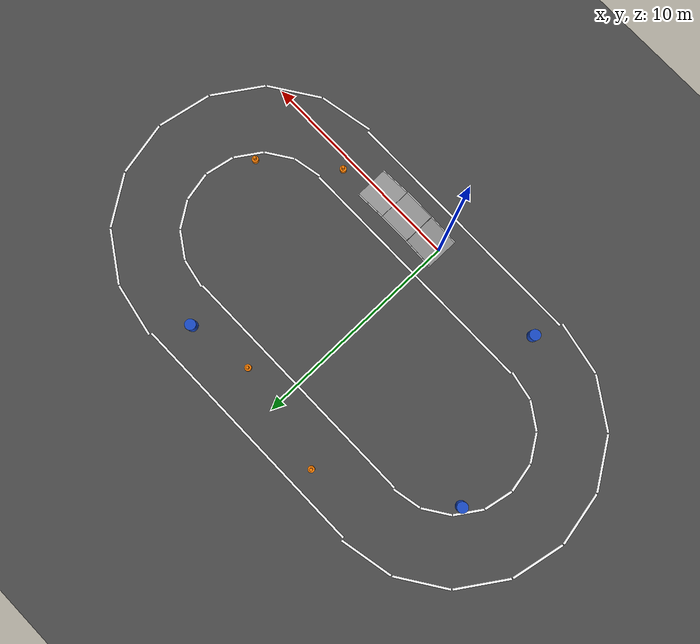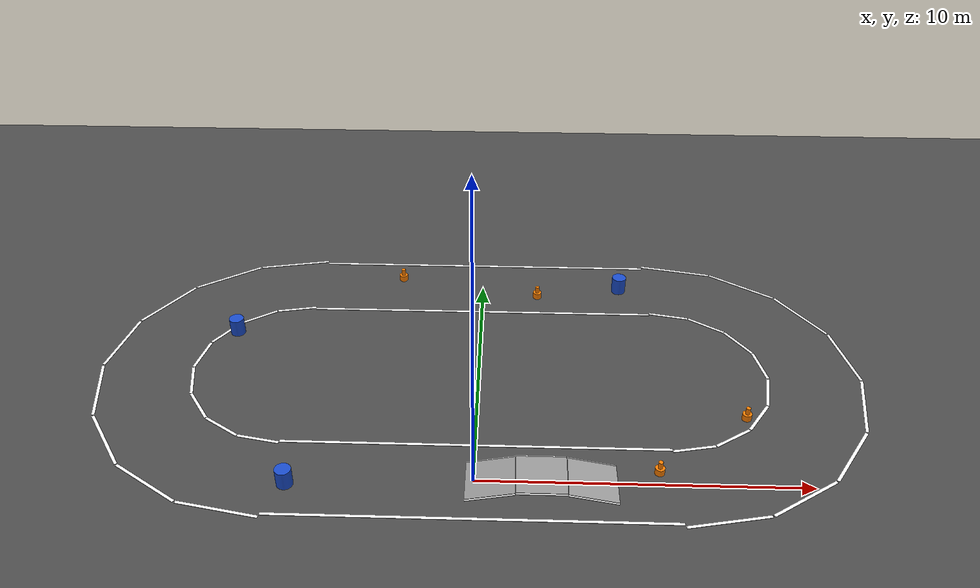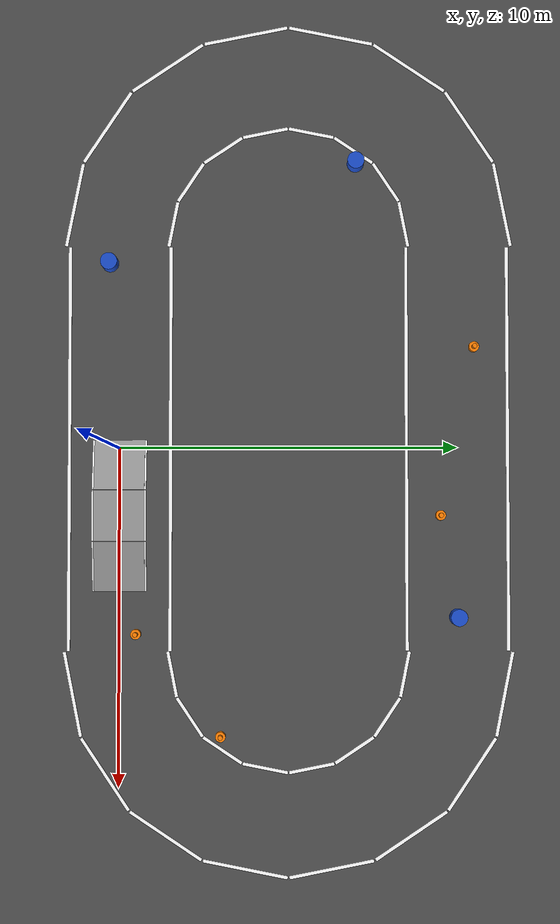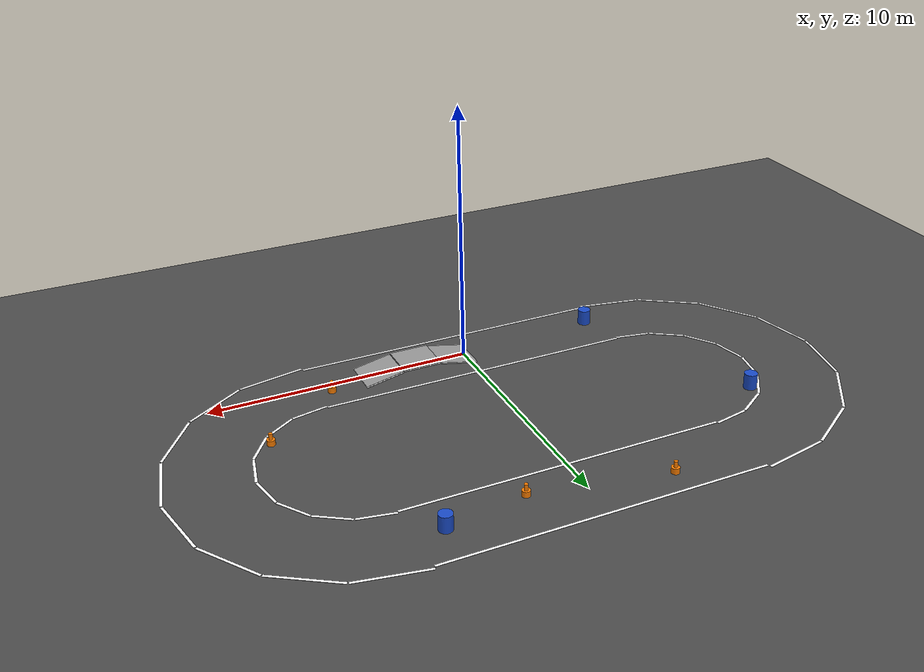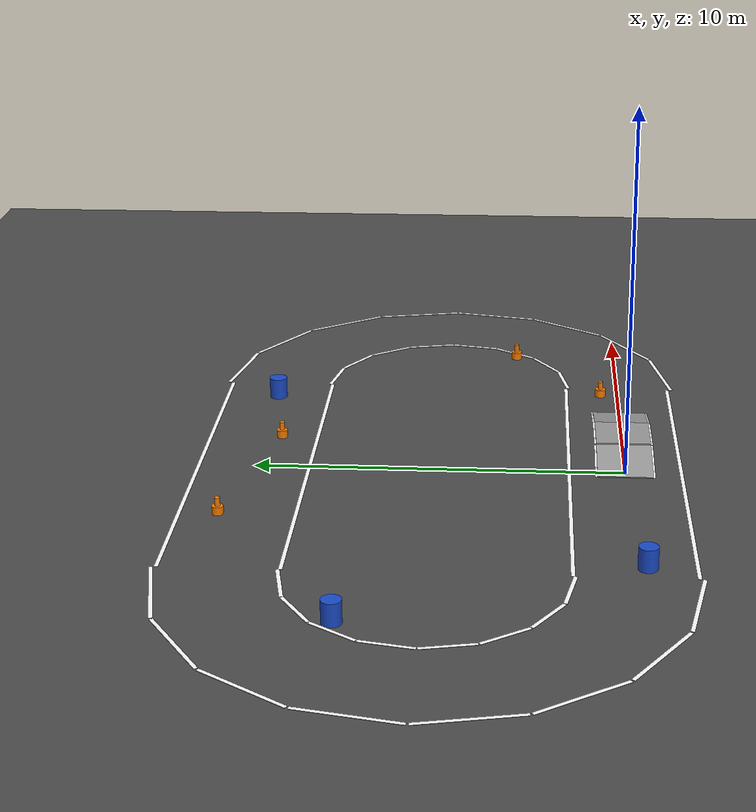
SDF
<?xml version="1.0" ?>
<sdf version="1.7">
  <world name="igvc_course">

    <!-- Physics (Updated for Gazebo Classic / ODE) -->
    <physics type="ode">
      <max_step_size>0.001</max_step_size>
      <real_time_update_rate>1000</real_time_update_rate>
    </physics>

    <!-- Spherical coordinates: Oakland University, MI (IGVC venue) -->
    <spherical_coordinates>
      <surface_model>EARTH_WGS84</surface_model>
      <latitude_deg>42.6745</latitude_deg>
      <longitude_deg>-83.2187</longitude_deg>
      <elevation>282.0</elevation>
      <heading_deg>0</heading_deg>
    </spherical_coordinates>

    <!-- Sun -->
    <light type="directional" name="sun">
      <cast_shadows>true</cast_shadows>
      <pose>0 0 10 0 0 0</pose>
      <diffuse>0.9 0.9 0.9 1</diffuse>
      <specular>0.3 0.3 0.3 1</specular>
      <direction>-0.5 0.3 -0.9</direction>
    </light>

    <!-- Ground plane (dark gray asphalt) -->
    <model name="ground_plane">
      <static>true</static>
      <link name="link">
        <collision name="collision">
          <geometry>
            <plane><normal>0 0 1</normal><size>50 50</size></plane>
          </geometry>
          <surface>
            <friction>
              <ode><mu>0.8</mu><mu2>0.8</mu2></ode>
            </friction>
          </surface>
        </collision>
        <visual name="visual">
          <geometry>
            <plane><normal>0 0 1</normal><size>50 50</size></plane>
          </geometry>
          <material>
            <ambient>0.25 0.25 0.25 1</ambient>
            <diffuse>0.3 0.3 0.3 1</diffuse>
            <specular>0.1 0.1 0.1 1</specular>
          </material>
        </visual>
      </link>
    </model>

    <!-- ===== WHITE LANE LINES ===== -->
    <!-- Oval/stadium track: 12m straights, 5m-radius semicircles, 3m lane width -->

    <!-- Bottom straight (y=0 centerline): inner line at y=-1.5, outer at y=1.5 -->
    <model name="lane_bottom_inner">
      <static>true</static>
      <pose>0.0000 -1.5000 0.01 0 0 0.0000</pose>
      <link name="link">
        <visual name="visual">
          <geometry><box><size>12.0000 0.1 0.01</size></box></geometry>
          <material>
            <ambient>1 1 1 1</ambient>
            <diffuse>1 1 1 1</diffuse>
            <emissive>1 1 1 1</emissive>
          </material>
        </visual>
      </link>
    </model>
    <model name="lane_bottom_outer">
      <static>true</static>
      <pose>0.0000 1.5000 0.01 0 0 0.0000</pose>
      <link name="link">
        <visual name="visual">
          <geometry><box><size>12.0000 0.1 0.01</size></box></geometry>
          <material>
            <ambient>1 1 1 1</ambient>
            <diffuse>1 1 1 1</diffuse>
            <emissive>1 1 1 1</emissive>
          </material>
        </visual>
      </link>
    </model>

    <!-- Top straight (y=10 centerline): inner line at y=8.5, outer at y=11.5 -->
    <model name="lane_top_inner">
      <static>true</static>
      <pose>0.0000 8.5000 0.01 0 0 0.0000</pose>
      <link name="link">
        <visual name="visual">
          <geometry><box><size>12.0000 0.1 0.01</size></box></geometry>
          <material>
            <ambient>1 1 1 1</ambient>
            <diffuse>1 1 1 1</diffuse>
            <emissive>1 1 1 1</emissive>
          </material>
        </visual>
      </link>
    </model>
    <model name="lane_top_outer">
      <static>true</static>
      <pose>0.0000 11.5000 0.01 0 0 0.0000</pose>
      <link name="link">
        <visual name="visual">
          <geometry><box><size>12.0000 0.1 0.01</size></box></geometry>
          <material>
            <ambient>1 1 1 1</ambient>
            <diffuse>1 1 1 1</diffuse>
            <emissive>1 1 1 1</emissive>
          </material>
        </visual>
      </link>
    </model>

    <!-- Right semicircle curves: center (6, 5), CCW from -90° to +90° -->
    <model name="curve_right_inner_0">
      <static>true</static>
      <pose>6.6828 1.5673 0.01 0 0 0.1963</pose>
      <link name="link">
        <visual name="visual">
          <geometry><box><size>1.3656 0.1 0.01</size></box></geometry>
          <material>
            <ambient>1 1 1 1</ambient>
            <diffuse>1 1 1 1</diffuse>
            <emissive>1 1 1 1</emissive>
          </material>
        </visual>
      </link>
    </model>
    <model name="curve_right_inner_1">
      <static>true</static>
      <pose>7.9445 2.0899 0.01 0 0 0.5890</pose>
      <link name="link">
        <visual name="visual">
          <geometry><box><size>1.3656 0.1 0.01</size></box></geometry>
          <material>
            <ambient>1 1 1 1</ambient>
            <diffuse>1 1 1 1</diffuse>
            <emissive>1 1 1 1</emissive>
          </material>
        </visual>
      </link>
    </model>
    <model name="curve_right_inner_2">
      <static>true</static>
      <pose>8.9101 3.0555 0.01 0 0 0.9817</pose>
      <link name="link">
        <visual name="visual">
          <geometry><box><size>1.3656 0.1 0.01</size></box></geometry>
          <material>
            <ambient>1 1 1 1</ambient>
            <diffuse>1 1 1 1</diffuse>
            <emissive>1 1 1 1</emissive>
          </material>
        </visual>
      </link>
    </model>
    <model name="curve_right_inner_3">
      <static>true</static>
      <pose>9.4327 4.3172 0.01 0 0 1.3744</pose>
      <link name="link">
        <visual name="visual">
          <geometry><box><size>1.3656 0.1 0.01</size></box></geometry>
          <material>
            <ambient>1 1 1 1</ambient>
            <diffuse>1 1 1 1</diffuse>
            <emissive>1 1 1 1</emissive>
          </material>
        </visual>
      </link>
    </model>
    <model name="curve_right_inner_4">
      <static>true</static>
      <pose>9.4327 5.6828 0.01 0 0 1.7671</pose>
      <link name="link">
        <visual name="visual">
          <geometry><box><size>1.3656 0.1 0.01</size></box></geometry>
          <material>
            <ambient>1 1 1 1</ambient>
            <diffuse>1 1 1 1</diffuse>
            <emissive>1 1 1 1</emissive>
          </material>
        </visual>
      </link>
    </model>
    <model name="curve_right_inner_5">
      <static>true</static>
      <pose>8.9101 6.9445 0.01 0 0 2.1598</pose>
      <link name="link">
        <visual name="visual">
          <geometry><box><size>1.3656 0.1 0.01</size></box></geometry>
          <material>
            <ambient>1 1 1 1</ambient>
            <diffuse>1 1 1 1</diffuse>
            <emissive>1 1 1 1</emissive>
          </material>
        </visual>
      </link>
    </model>
    <model name="curve_right_inner_6">
      <static>true</static>
      <pose>7.9445 7.9101 0.01 0 0 2.5525</pose>
      <link name="link">
        <visual name="visual">
          <geometry><box><size>1.3656 0.1 0.01</size></box></geometry>
          <material>
            <ambient>1 1 1 1</ambient>
            <diffuse>1 1 1 1</diffuse>
            <emissive>1 1 1 1</emissive>
          </material>
        </visual>
      </link>
    </model>
    <model name="curve_right_inner_7">
      <static>true</static>
      <pose>6.6828 8.4327 0.01 0 0 2.9452</pose>
      <link name="link">
        <visual name="visual">
          <geometry><box><size>1.3656 0.1 0.01</size></box></geometry>
          <material>
            <ambient>1 1 1 1</ambient>
            <diffuse>1 1 1 1</diffuse>
            <emissive>1 1 1 1</emissive>
          </material>
        </visual>
      </link>
    </model>
    <model name="curve_right_outer_0">
      <static>true</static>
      <pose>7.2681 -1.3751 0.01 0 0 0.1963</pose>
      <link name="link">
        <visual name="visual">
          <geometry><box><size>2.5362 0.1 0.01</size></box></geometry>
          <material>
            <ambient>1 1 1 1</ambient>
            <diffuse>1 1 1 1</diffuse>
            <emissive>1 1 1 1</emissive>
          </material>
        </visual>
      </link>
    </model>
    <model name="curve_right_outer_1">
      <static>true</static>
      <pose>9.6112 -0.4046 0.01 0 0 0.5890</pose>
      <link name="link">
        <visual name="visual">
          <geometry><box><size>2.5362 0.1 0.01</size></box></geometry>
          <material>
            <ambient>1 1 1 1</ambient>
            <diffuse>1 1 1 1</diffuse>
            <emissive>1 1 1 1</emissive>
          </material>
        </visual>
      </link>
    </model>
    <model name="curve_right_outer_2">
      <static>true</static>
      <pose>11.4046 1.3888 0.01 0 0 0.9817</pose>
      <link name="link">
        <visual name="visual">
          <geometry><box><size>2.5362 0.1 0.01</size></box></geometry>
          <material>
            <ambient>1 1 1 1</ambient>
            <diffuse>1 1 1 1</diffuse>
            <emissive>1 1 1 1</emissive>
          </material>
        </visual>
      </link>
    </model>
    <model name="curve_right_outer_3">
      <static>true</static>
      <pose>12.3751 3.7319 0.01 0 0 1.3744</pose>
      <link name="link">
        <visual name="visual">
          <geometry><box><size>2.5362 0.1 0.01</size></box></geometry>
          <material>
            <ambient>1 1 1 1</ambient>
            <diffuse>1 1 1 1</diffuse>
            <emissive>1 1 1 1</emissive>
          </material>
        </visual>
      </link>
    </model>
    <model name="curve_right_outer_4">
      <static>true</static>
      <pose>12.3751 6.2681 0.01 0 0 1.7671</pose>
      <link name="link">
        <visual name="visual">
          <geometry><box><size>2.5362 0.1 0.01</size></box></geometry>
          <material>
            <ambient>1 1 1 1</ambient>
            <diffuse>1 1 1 1</diffuse>
            <emissive>1 1 1 1</emissive>
          </material>
        </visual>
      </link>
    </model>
    <model name="curve_right_outer_5">
      <static>true</static>
      <pose>11.4046 8.6112 0.01 0 0 2.1598</pose>
      <link name="link">
        <visual name="visual">
          <geometry><box><size>2.5362 0.1 0.01</size></box></geometry>
          <material>
            <ambient>1 1 1 1</ambient>
            <diffuse>1 1 1 1</diffuse>
            <emissive>1 1 1 1</emissive>
          </material>
        </visual>
      </link>
    </model>
    <model name="curve_right_outer_6">
      <static>true</static>
      <pose>9.6112 10.4046 0.01 0 0 2.5525</pose>
      <link name="link">
        <visual name="visual">
          <geometry><box><size>2.5362 0.1 0.01</size></box></geometry>
          <material>
            <ambient>1 1 1 1</ambient>
            <diffuse>1 1 1 1</diffuse>
            <emissive>1 1 1 1</emissive>
          </material>
        </visual>
      </link>
    </model>
    <model name="curve_right_outer_7">
      <static>true</static>
      <pose>7.2681 11.3751 0.01 0 0 2.9452</pose>
      <link name="link">
        <visual name="visual">
          <geometry><box><size>2.5362 0.1 0.01</size></box></geometry>
          <material>
            <ambient>1 1 1 1</ambient>
            <diffuse>1 1 1 1</diffuse>
            <emissive>1 1 1 1</emissive>
          </material>
        </visual>
      </link>
    </model>

    <!-- Left semicircle curves: center (-6, 5), CCW from +90° to +270° -->
    <model name="curve_left_inner_0">
      <static>true</static>
      <pose>-6.6828 8.4327 0.01 0 0 3.3379</pose>
      <link name="link">
        <visual name="visual">
          <geometry><box><size>1.3656 0.1 0.01</size></box></geometry>
          <material>
            <ambient>1 1 1 1</ambient>
            <diffuse>1 1 1 1</diffuse>
            <emissive>1 1 1 1</emissive>
          </material>
        </visual>
      </link>
    </model>
    <model name="curve_left_inner_1">
      <static>true</static>
      <pose>-7.9445 7.9101 0.01 0 0 3.7306</pose>
      <link name="link">
        <visual name="visual">
          <geometry><box><size>1.3656 0.1 0.01</size></box></geometry>
          <material>
            <ambient>1 1 1 1</ambient>
            <diffuse>1 1 1 1</diffuse>
            <emissive>1 1 1 1</emissive>
          </material>
        </visual>
      </link>
    </model>
    <model name="curve_left_inner_2">
      <static>true</static>
      <pose>-8.9101 6.9445 0.01 0 0 4.1233</pose>
      <link name="link">
        <visual name="visual">
          <geometry><box><size>1.3656 0.1 0.01</size></box></geometry>
          <material>
            <ambient>1 1 1 1</ambient>
            <diffuse>1 1 1 1</diffuse>
            <emissive>1 1 1 1</emissive>
          </material>
        </visual>
      </link>
    </model>
    <model name="curve_left_inner_3">
      <static>true</static>
      <pose>-9.4327 5.6828 0.01 0 0 4.5160</pose>
      <link name="link">
        <visual name="visual">
          <geometry><box><size>1.3656 0.1 0.01</size></box></geometry>
          <material>
            <ambient>1 1 1 1</ambient>
            <diffuse>1 1 1 1</diffuse>
            <emissive>1 1 1 1</emissive>
          </material>
        </visual>
      </link>
    </model>
    <model name="curve_left_inner_4">
      <static>true</static>
      <pose>-9.4327 4.3172 0.01 0 0 4.9087</pose>
      <link name="link">
        <visual name="visual">
          <geometry><box><size>1.3656 0.1 0.01</size></box></geometry>
          <material>
            <ambient>1 1 1 1</ambient>
            <diffuse>1 1 1 1</diffuse>
            <emissive>1 1 1 1</emissive>
          </material>
        </visual>
      </link>
    </model>
    <model name="curve_left_inner_5">
      <static>true</static>
      <pose>-8.9101 3.0555 0.01 0 0 5.3014</pose>
      <link name="link">
        <visual name="visual">
          <geometry><box><size>1.3656 0.1 0.01</size></box></geometry>
          <material>
            <ambient>1 1 1 1</ambient>
            <diffuse>1 1 1 1</diffuse>
            <emissive>1 1 1 1</emissive>
          </material>
        </visual>
      </link>
    </model>
    <model name="curve_left_inner_6">
      <static>true</static>
      <pose>-7.9445 2.0899 0.01 0 0 5.6941</pose>
      <link name="link">
        <visual name="visual">
          <geometry><box><size>1.3656 0.1 0.01</size></box></geometry>
          <material>
            <ambient>1 1 1 1</ambient>
            <diffuse>1 1 1 1</diffuse>
            <emissive>1 1 1 1</emissive>
          </material>
        </visual>
      </link>
    </model>
    <model name="curve_left_inner_7">
      <static>true</static>
      <pose>-6.6828 1.5673 0.01 0 0 6.0868</pose>
      <link name="link">
        <visual name="visual">
          <geometry><box><size>1.3656 0.1 0.01</size></box></geometry>
          <material>
            <ambient>1 1 1 1</ambient>
            <diffuse>1 1 1 1</diffuse>
            <emissive>1 1 1 1</emissive>
          </material>
        </visual>
      </link>
    </model>
    <model name="curve_left_outer_0">
      <static>true</static>
      <pose>-7.2681 11.3751 0.01 0 0 3.3379</pose>
      <link name="link">
        <visual name="visual">
          <geometry><box><size>2.5362 0.1 0.01</size></box></geometry>
          <material>
            <ambient>1 1 1 1</ambient>
            <diffuse>1 1 1 1</diffuse>
            <emissive>1 1 1 1</emissive>
          </material>
        </visual>
      </link>
    </model>
    <model name="curve_left_outer_1">
      <static>true</static>
      <pose>-9.6112 10.4046 0.01 0 0 3.7306</pose>
      <link name="link">
        <visual name="visual">
          <geometry><box><size>2.5362 0.1 0.01</size></box></geometry>
          <material>
            <ambient>1 1 1 1</ambient>
            <diffuse>1 1 1 1</diffuse>
            <emissive>1 1 1 1</emissive>
          </material>
        </visual>
      </link>
    </model>
    <model name="curve_left_outer_2">
      <static>true</static>
      <pose>-11.4046 8.6112 0.01 0 0 4.1233</pose>
      <link name="link">
        <visual name="visual">
          <geometry><box><size>2.5362 0.1 0.01</size></box></geometry>
          <material>
            <ambient>1 1 1 1</ambient>
            <diffuse>1 1 1 1</diffuse>
            <emissive>1 1 1 1</emissive>
          </material>
        </visual>
      </link>
    </model>
    <model name="curve_left_outer_3">
      <static>true</static>
      <pose>-12.3751 6.2681 0.01 0 0 4.5160</pose>
      <link name="link">
        <visual name="visual">
          <geometry><box><size>2.5362 0.1 0.01</size></box></geometry>
          <material>
            <ambient>1 1 1 1</ambient>
            <diffuse>1 1 1 1</diffuse>
            <emissive>1 1 1 1</emissive>
          </material>
        </visual>
      </link>
    </model>
    <model name="curve_left_outer_4">
      <static>true</static>
      <pose>-12.3751 3.7319 0.01 0 0 4.9087</pose>
      <link name="link">
        <visual name="visual">
          <geometry><box><size>2.5362 0.1 0.01</size></box></geometry>
          <material>
            <ambient>1 1 1 1</ambient>
            <diffuse>1 1 1 1</diffuse>
            <emissive>1 1 1 1</emissive>
          </material>
        </visual>
      </link>
    </model>
    <model name="curve_left_outer_5">
      <static>true</static>
      <pose>-11.4046 1.3888 0.01 0 0 5.3014</pose>
      <link name="link">
        <visual name="visual">
          <geometry><box><size>2.5362 0.1 0.01</size></box></geometry>
          <material>
            <ambient>1 1 1 1</ambient>
            <diffuse>1 1 1 1</diffuse>
            <emissive>1 1 1 1</emissive>
          </material>
        </visual>
      </link>
    </model>
    <model name="curve_left_outer_6">
      <static>true</static>
      <pose>-9.6112 -0.4046 0.01 0 0 5.6941</pose>
      <link name="link">
        <visual name="visual">
          <geometry><box><size>2.5362 0.1 0.01</size></box></geometry>
          <material>
            <ambient>1 1 1 1</ambient>
            <diffuse>1 1 1 1</diffuse>
            <emissive>1 1 1 1</emissive>
          </material>
        </visual>
      </link>
    </model>
    <model name="curve_left_outer_7">
      <static>true</static>
      <pose>-7.2681 -1.3751 0.01 0 0 6.0868</pose>
      <link name="link">
        <visual name="visual">
          <geometry><box><size>2.5362 0.1 0.01</size></box></geometry>
          <material>
            <ambient>1 1 1 1</ambient>
            <diffuse>1 1 1 1</diffuse>
            <emissive>1 1 1 1</emissive>
          </material>
        </visual>
      </link>
    </model>

    <!-- ===== OBSTACLES ===== -->
    <!-- 8 obstacles placed within the 3m-wide lane -->

    <!-- Bottom straight obstacles -->
    <include>
      <uri>model://cone</uri>
      <name>cone_1</name>
      <pose>5.5 0.5 0 0 0 0</pose>
    </include>
    <include>
      <uri>model://barrel</uri>
      <name>barrel_1</name>
      <pose>-5.5 -0.3 0 0 0 0</pose>
    </include>

    <!-- Top straight obstacles -->
    <include>
      <uri>model://cone</uri>
      <name>cone_2</name>
      <pose>-3 10.5 0 0 0 0</pose>
    </include>
    <include>
      <uri>model://cone</uri>
      <name>cone_3</name>
      <pose>2 9.5 0 0 0 0</pose>
    </include>
    <include>
      <uri>model://barrel</uri>
      <name>barrel_2</name>
      <pose>5 10 0 0 0 0</pose>
    </include>

    <!-- Right curve obstacle -->
    <include>
      <uri>model://cone</uri>
      <name>cone_4</name>
      <pose>8.5 3 0 0 0 0</pose>
    </include>

    <!-- Left curve obstacle -->
    <include>
      <uri>model://barrel</uri>
      <name>barrel_3</name>
      <pose>-8.5 7 0 0 0 0</pose>
    </include>

    <!-- ===== RAMP ===== -->
    <!-- Ramp on bottom straight, centered at x=2 -->
    <include>
      <uri>model://ramp</uri>
      <name>ramp_1</name>
      <pose>2 0 0 0 0 0</pose>
    </include>

  </world>
</sdf>

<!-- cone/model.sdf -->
<sdf version="1.8">
  <model name="cone">
    <static>true</static>
    <link name="link">
      <!-- Base cylinder (wider bottom) -->
      <collision name="collision_base">
        <geometry>
          <cylinder>
            <radius>0.15</radius>
            <length>0.22</length>
          </cylinder>
        </geometry>
        <pose>0 0 0.11 0 0 0</pose>
      </collision>
      <visual name="visual_base">
        <geometry>
          <cylinder>
            <radius>0.15</radius>
            <length>0.22</length>
          </cylinder>
        </geometry>
        <pose>0 0 0.11 0 0 0</pose>
        <material>
          <ambient>1.0 0.5 0.0 1</ambient>
          <diffuse>1.0 0.5 0.0 1</diffuse>
          <specular>0.3 0.3 0.3 1</specular>
        </material>
      </visual>
      <!-- Top cylinder (narrower top) -->
      <collision name="collision_top">
        <geometry>
          <cylinder>
            <radius>0.07</radius>
            <length>0.23</length>
          </cylinder>
        </geometry>
        <pose>0 0 0.335 0 0 0</pose>
      </collision>
      <visual name="visual_top">
        <geometry>
          <cylinder>
            <radius>0.07</radius>
            <length>0.23</length>
          </cylinder>
        </geometry>
        <pose>0 0 0.335 0 0 0</pose>
        <material>
          <ambient>1.0 0.5 0.0 1</ambient>
          <diffuse>1.0 0.5 0.0 1</diffuse>
          <specular>0.3 0.3 0.3 1</specular>
        </material>
      </visual>
    </link>
  </model>
</sdf>

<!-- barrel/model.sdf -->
<sdf version="1.8">
  <model name="barrel">
    <static>true</static>
    <link name="link">
      <collision name="collision">
        <geometry>
          <cylinder>
            <radius>0.25</radius>
            <length>0.6</length>
          </cylinder>
        </geometry>
        <pose>0 0 0.3 0 0 0</pose>
      </collision>
      <visual name="visual">
        <geometry>
          <cylinder>
            <radius>0.25</radius>
            <length>0.6</length>
          </cylinder>
        </geometry>
        <pose>0 0 0.3 0 0 0</pose>
        <material>
          <ambient>0.1 0.3 0.8 1</ambient>
          <diffuse>0.1 0.3 0.8 1</diffuse>
          <specular>0.3 0.3 0.3 1</specular>
        </material>
      </visual>
    </link>
  </model>
</sdf>

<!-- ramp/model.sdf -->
<sdf version="1.8">
  <model name="ramp">
    <static>true</static>

    <!-- Up slope -->
    <link name="up_slope">
      <pose>-1.5 0 0.125 0 -0.1963 0</pose>
      <collision name="collision">
        <geometry><box><size>1.5 1.5 0.05</size></box></geometry>
        <surface>
          <friction><ode><mu>1.0</mu><mu2>1.0</mu2></ode></friction>
        </surface>
      </collision>
      <visual name="visual">
        <geometry><box><size>1.5 1.5 0.05</size></box></geometry>
        <material>
          <ambient>0.5 0.5 0.5 1</ambient>
          <diffuse>0.6 0.6 0.6 1</diffuse>
        </material>
      </visual>
    </link>

    <!-- Up slope lane lines -->
    <link name="up_slope_lane_left">
      <pose>-1.5 0.75 0.125 0 -0.1963 0</pose>
      <visual name="visual">
        <geometry><box><size>1.5 0.1 0.01</size></box></geometry>
        <material>
          <ambient>1 1 1 1</ambient>
          <diffuse>1 1 1 1</diffuse>
          <emissive>1 1 1 1</emissive>
        </material>
      </visual>
    </link>
    <link name="up_slope_lane_right">
      <pose>-1.5 -0.75 0.125 0 -0.1963 0</pose>
      <visual name="visual">
        <geometry><box><size>1.5 0.1 0.01</size></box></geometry>
        <material>
          <ambient>1 1 1 1</ambient>
          <diffuse>1 1 1 1</diffuse>
          <emissive>1 1 1 1</emissive>
        </material>
      </visual>
    </link>

    <!-- Flat top -->
    <link name="flat_top">
      <pose>0 0 0.3 0 0 0</pose>
      <collision name="collision">
        <geometry><box><size>1.5 1.5 0.05</size></box></geometry>
        <surface>
          <friction><ode><mu>1.0</mu><mu2>1.0</mu2></ode></friction>
        </surface>
      </collision>
      <visual name="visual">
        <geometry><box><size>1.5 1.5 0.05</size></box></geometry>
        <material>
          <ambient>0.5 0.5 0.5 1</ambient>
          <diffuse>0.6 0.6 0.6 1</diffuse>
        </material>
      </visual>
    </link>

    <!-- Flat top lane lines -->
    <link name="flat_top_lane_left">
      <pose>0 0.75 0.3 0 0 0</pose>
      <visual name="visual">
        <geometry><box><size>1.5 0.1 0.01</size></box></geometry>
        <material>
          <ambient>1 1 1 1</ambient>
          <diffuse>1 1 1 1</diffuse>
          <emissive>1 1 1 1</emissive>
        </material>
      </visual>
    </link>
    <link name="flat_top_lane_right">
      <pose>0 -0.75 0.3 0 0 0</pose>
      <visual name="visual">
        <geometry><box><size>1.5 0.1 0.01</size></box></geometry>
        <material>
          <ambient>1 1 1 1</ambient>
          <diffuse>1 1 1 1</diffuse>
          <emissive>1 1 1 1</emissive>
        </material>
      </visual>
    </link>

    <!-- Down slope -->
    <link name="down_slope">
      <pose>1.5 0 0.125 0 0.1963 0</pose>
      <collision name="collision">
        <geometry><box><size>1.5 1.5 0.05</size></box></geometry>
        <surface>
          <friction><ode><mu>1.0</mu><mu2>1.0</mu2></ode></friction>
        </surface>
      </collision>
      <visual name="visual">
        <geometry><box><size>1.5 1.5 0.05</size></box></geometry>
        <material>
          <ambient>0.5 0.5 0.5 1</ambient>
          <diffuse>0.6 0.6 0.6 1</diffuse>
        </material>
      </visual>
    </link>

    <!-- Down slope lane lines -->
    <link name="down_slope_lane_left">
      <pose>1.5 0.75 0.125 0 0.1963 0</pose>
      <visual name="visual">
        <geometry><box><size>1.5 0.1 0.01</size></box></geometry>
        <material>
          <ambient>1 1 1 1</ambient>
          <diffuse>1 1 1 1</diffuse>
          <emissive>1 1 1 1</emissive>
        </material>
      </visual>
    </link>
    <link name="down_slope_lane_right">
      <pose>1.5 -0.75 0.125 0 0.1963 0</pose>
      <visual name="visual">
        <geometry><box><size>1.5 0.1 0.01</size></box></geometry>
        <material>
          <ambient>1 1 1 1</ambient>
          <diffuse>1 1 1 1</diffuse>
          <emissive>1 1 1 1</emissive>
        </material>
      </visual>
    </link>

  </model>
</sdf>
